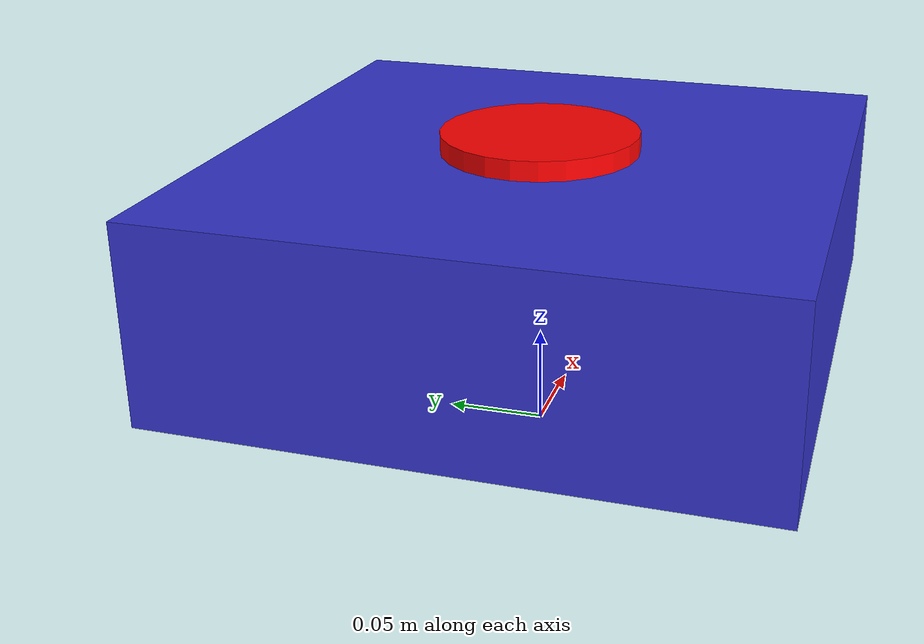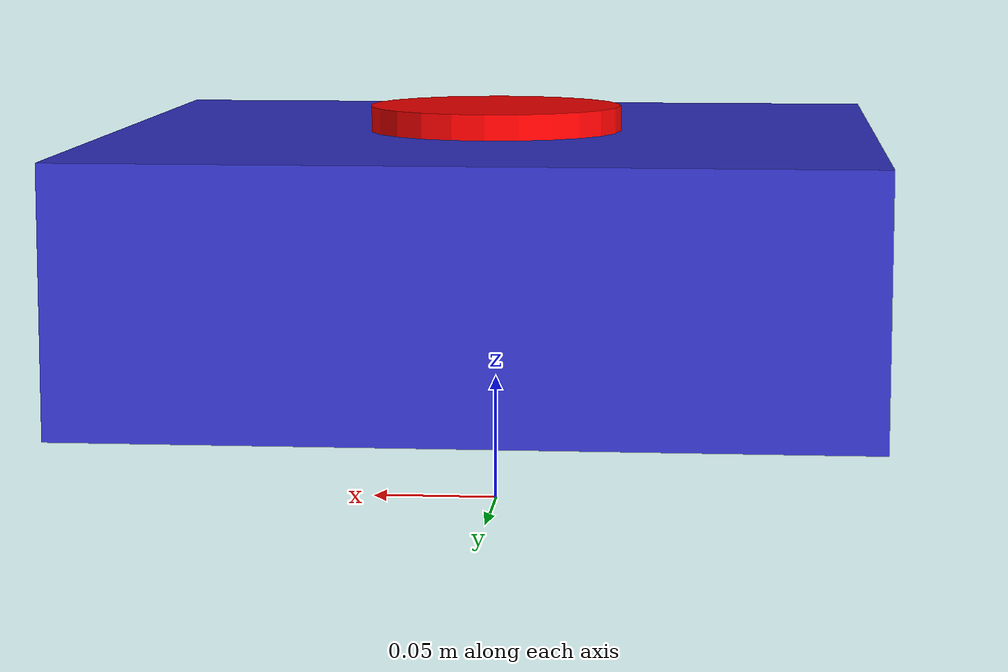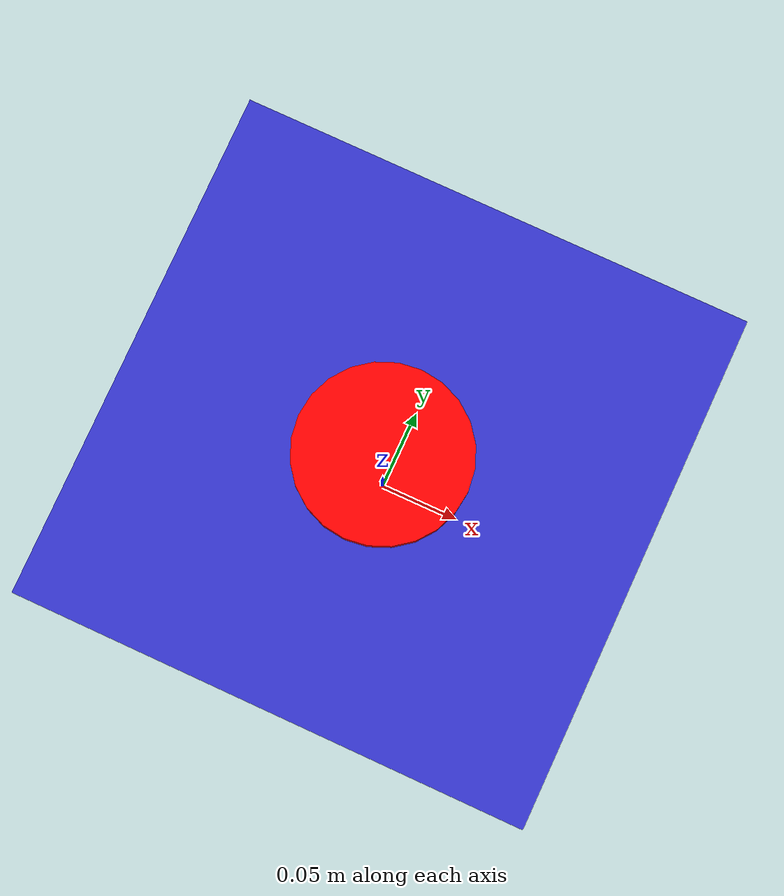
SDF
<?xml version="1.0" ?>
<sdf version="1.6">
  <model name="basic_drone">
    <static>false</static>
    <link name="base_link">
      <pose>0 0 0.1 0 0 0</pose>
      <inertial>
        <mass>1.5</mass>
        <inertia>
          <ixx>0.029125</ixx>
          <iyy>0.029125</iyy>
          <izz>0.055225</izz>
        </inertia>
      </inertial>
      <collision name="base_link_collision">
        <geometry>
          <box>
            <size>0.3 0.3 0.1</size>
          </box>
        </geometry>
      </collision>
      <visual name="base_link_visual">
        <geometry>
          <box>
            <size>0.3 0.3 0.1</size>
          </box>
        </geometry>
        <material>
          <ambient>0.2 0.2 0.8 1</ambient>
          <diffuse>0.2 0.2 0.8 1</diffuse>
        </material>
      </visual>
    </link>

    <!-- 2D LiDAR Sensor -->
    <link name="lidar_link">
      <pose>0 0 0.15 0 0 0</pose>
      <inertial>
        <mass>0.1</mass>
        <inertia>
          <ixx>0.001</ixx>
          <iyy>0.001</iyy>
          <izz>0.001</izz>
        </inertia>
      </inertial>
      <visual name="lidar_visual">
        <geometry>
          <cylinder>
            <radius>0.05</radius>
            <length>0.02</length>
          </cylinder>
        </geometry>
        <material>
          <ambient>1 0 0 1</ambient>
          <diffuse>1 0 0 1</diffuse>
        </material>
      </visual>
      <sensor name="lidar_sensor" type="ray">
        <pose>0 0 0 0 0 0</pose>
        <visualize>true</visualize>
        <update_rate>20</update_rate>
        <ray>
          <scan>
            <horizontal>
              <samples>360</samples>
              <resolution>1.0</resolution>
              <min_angle>-3.14159</min_angle>
              <max_angle>3.14159</max_angle>
            </horizontal>
          </scan>
          <range>
            <min>0.1</min>
            <max>10.0</max>
            <resolution>0.01</resolution>
          </range>
        </ray>
        <plugin filename="libgazebo_ros_ray_sensor.so" name="lidar_plugin">
          <ros>
            <namespace>/uav</namespace>
          </ros>
          <topic>scan</topic>
          <frame_name>lidar_link</frame_name>
        </plugin>
      </sensor>
    </link>

    <joint name="lidar_joint" type="fixed">
      <parent>base_link</parent>
      <child>lidar_link</child>
    </joint>

    <!-- IMU Sensor -->
    <link name="imu_link">
      <pose>0 0 0 0 0 0</pose>
      <inertial>
        <mass>0.01</mass>
        <inertia>
          <ixx>0.00001</ixx>
          <iyy>0.00001</iyy>
          <izz>0.00001</izz>
        </inertia>
      </inertial>
      <sensor name="imu_sensor" type="imu">
        <plugin filename="libgazebo_ros_imu_sensor.so" name="imu_plugin">
          <ros>
            <namespace>/uav</namespace>
          </ros>
          <topic>imu</topic>
          <frame_name>imu_link</frame_name>
        </plugin>
        <always_on>true</always_on>
        <update_rate>100</update_rate>
        <imu>
          <angular_velocity>
            <x>
              <noise type="gaussian">
                <mean>0.0</mean>
                <stddev>0.0002</stddev>
              </noise>
            </x>
            <y>
              <noise type="gaussian">
                <mean>0.0</mean>
                <stddev>0.0002</stddev>
              </noise>
            </y>
            <z>
              <noise type="gaussian">
                <mean>0.0</mean>
                <stddev>0.0002</stddev>
              </noise>
            </z>
          </angular_velocity>
          <linear_acceleration>
            <x>
              <noise type="gaussian">
                <mean>0.0</mean>
                <stddev>0.01</stddev>
              </noise>
            </x>
            <y>
              <noise type="gaussian">
                <mean>0.0</mean>
                <stddev>0.01</stddev>
              </noise>
            </y>
            <z>
              <noise type="gaussian">
                <mean>0.0</mean>
                <stddev>0.01</stddev>
              </noise>
            </z>
          </linear_acceleration>
        </imu>
      </sensor>
    </link>

    <joint name="imu_joint" type="fixed">
      <parent>base_link</parent>
      <child>imu_link</child>
    </joint>
  </model>
</sdf>
